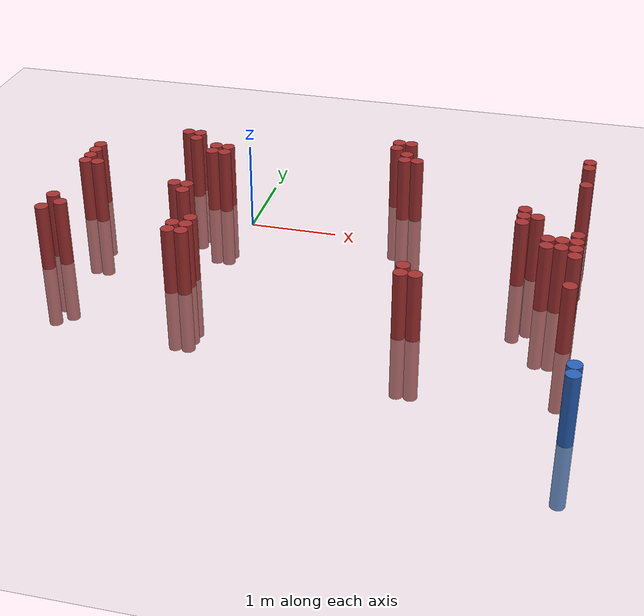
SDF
<sdf version="1.6">
 <world name="default">
  <model name="ground_plane">
   <static>1</static>
   <link name="link">
    <collision name="collision">
     <geometry><plane><normal>0 0 1</normal><size>100 100</size></plane></geometry>
     <surface><friction><ode><mu>100</mu><mu2>50</mu2></ode></friction></surface>
    </collision>
    <visual name="visual">
     <cast_shadows>0</cast_shadows>
     <geometry><plane><normal>0 0 1</normal><size>100 100</size></plane></geometry>
     <material>
      <script><uri>file://media/materials/scripts/gazebo.material</uri><name>Gazebo/Grey</name></script>
     </material>
    </visual>
   </link>
  </model>
  <model name="unit_cylinder_70">
   <static>1</static>
   <pose>3.925000 -3.275000 0.000000 0.000000 0.000000 0.000000</pose>
   <link name="link">
    <inertial>
     <mass>1</mass>
     <inertia><ixx>0.145833</ixx><ixy>0</ixy><ixz>0</ixz><iyy>0.145833</iyy><iyz>0</iyz><izz>0.125</izz></inertia>
    </inertial>
    <collision name="collision">
     <geometry><cylinder><radius>0.075000</radius><length>1.5</length></cylinder></geometry>
    </collision>
    <visual name="visual">
     <geometry><cylinder><radius>0.075000</radius><length>1.5</length></cylinder></geometry>
     <material>
      <ambient>0.152000 0.379000 0.720000 1</ambient>
      <diffuse>0.152000 0.379000 0.720000 1</diffuse>
     </material>
     <material>
      <script><name>Gazebo/Grey</name><uri>file://media/materials/scripts/gazebo.material</uri></script>
     </material>
    </visual>
   </link>
  </model>
  <model name="unit_cylinder_72">
   <static>1</static>
   <pose>3.925000 -3.125000 0.000000 0.000000 0.000000 0.000000</pose>
   <link name="link">
    <inertial>
     <mass>1</mass>
     <inertia><ixx>0.145833</ixx><ixy>0</ixy><ixz>0</ixz><iyy>0.145833</iyy><iyz>0</iyz><izz>0.125</izz></inertia>
    </inertial>
    <collision name="collision">
     <geometry><cylinder><radius>0.075000</radius><length>1.5</length></cylinder></geometry>
    </collision>
    <visual name="visual">
     <geometry><cylinder><radius>0.075000</radius><length>1.5</length></cylinder></geometry>
     <material>
      <ambient>0.152000 0.379000 0.720000 1</ambient>
      <diffuse>0.152000 0.379000 0.720000 1</diffuse>
     </material>
     <material>
      <script><name>Gazebo/Grey</name><uri>file://media/materials/scripts/gazebo.material</uri></script>
     </material>
    </visual>
   </link>
  </model>
  <model name="unit_cylinder_325">
   <static>1</static>
   <pose>-1.925000 -1.475000 0.000000 0.000000 0.000000 0.000000</pose>
   <link name="link">
    <inertial>
     <mass>1</mass>
     <inertia><ixx>0.145833</ixx><ixy>0</ixy><ixz>0</ixz><iyy>0.145833</iyy><iyz>0</iyz><izz>0.125</izz></inertia>
    </inertial>
    <collision name="collision">
     <geometry><cylinder><radius>0.075000</radius><length>1.5</length></cylinder></geometry>
    </collision>
    <visual name="visual">
     <geometry><cylinder><radius>0.075000</radius><length>1.5</length></cylinder></geometry>
     <material>
      <ambient>0.648000 0.192000 0.192000 1</ambient>
      <diffuse>0.648000 0.192000 0.192000 1</diffuse>
     </material>
     <material>
      <script><name>Gazebo/Grey</name><uri>file://media/materials/scripts/gazebo.material</uri></script>
     </material>
    </visual>
   </link>
  </model>
  <model name="unit_cylinder_326">
   <static>1</static>
   <pose>-1.925000 -1.175000 0.000000 0.000000 0.000000 0.000000</pose>
   <link name="link">
    <inertial>
     <mass>1</mass>
     <inertia><ixx>0.145833</ixx><ixy>0</ixy><ixz>0</ixz><iyy>0.145833</iyy><iyz>0</iyz><izz>0.125</izz></inertia>
    </inertial>
    <collision name="collision">
     <geometry><cylinder><radius>0.075000</radius><length>1.5</length></cylinder></geometry>
    </collision>
    <visual name="visual">
     <geometry><cylinder><radius>0.075000</radius><length>1.5</length></cylinder></geometry>
     <material>
      <ambient>0.648000 0.192000 0.192000 1</ambient>
      <diffuse>0.648000 0.192000 0.192000 1</diffuse>
     </material>
     <material>
      <script><name>Gazebo/Grey</name><uri>file://media/materials/scripts/gazebo.material</uri></script>
     </material>
    </visual>
   </link>
  </model>
  <model name="unit_cylinder_327">
   <static>1</static>
   <pose>-1.925000 -0.275000 0.000000 0.000000 0.000000 0.000000</pose>
   <link name="link">
    <inertial>
     <mass>1</mass>
     <inertia><ixx>0.145833</ixx><ixy>0</ixy><ixz>0</ixz><iyy>0.145833</iyy><iyz>0</iyz><izz>0.125</izz></inertia>
    </inertial>
    <collision name="collision">
     <geometry><cylinder><radius>0.075000</radius><length>1.5</length></cylinder></geometry>
    </collision>
    <visual name="visual">
     <geometry><cylinder><radius>0.075000</radius><length>1.5</length></cylinder></geometry>
     <material>
      <ambient>0.648000 0.192000 0.192000 1</ambient>
      <diffuse>0.648000 0.192000 0.192000 1</diffuse>
     </material>
     <material>
      <script><name>Gazebo/Grey</name><uri>file://media/materials/scripts/gazebo.material</uri></script>
     </material>
    </visual>
   </link>
  </model>
  <model name="unit_cylinder_328">
   <static>1</static>
   <pose>-1.925000 -0.125000 0.000000 0.000000 0.000000 0.000000</pose>
   <link name="link">
    <inertial>
     <mass>1</mass>
     <inertia><ixx>0.145833</ixx><ixy>0</ixy><ixz>0</ixz><iyy>0.145833</iyy><iyz>0</iyz><izz>0.125</izz></inertia>
    </inertial>
    <collision name="collision">
     <geometry><cylinder><radius>0.075000</radius><length>1.5</length></cylinder></geometry>
    </collision>
    <visual name="visual">
     <geometry><cylinder><radius>0.075000</radius><length>1.5</length></cylinder></geometry>
     <material>
      <ambient>0.648000 0.192000 0.192000 1</ambient>
      <diffuse>0.648000 0.192000 0.192000 1</diffuse>
     </material>
     <material>
      <script><name>Gazebo/Grey</name><uri>file://media/materials/scripts/gazebo.material</uri></script>
     </material>
    </visual>
   </link>
  </model>
  <model name="unit_cylinder_329">
   <static>1</static>
   <pose>-1.925000 0.025000 0.000000 0.000000 0.000000 0.000000</pose>
   <link name="link">
    <inertial>
     <mass>1</mass>
     <inertia><ixx>0.145833</ixx><ixy>0</ixy><ixz>0</ixz><iyy>0.145833</iyy><iyz>0</iyz><izz>0.125</izz></inertia>
    </inertial>
    <collision name="collision">
     <geometry><cylinder><radius>0.075000</radius><length>1.5</length></cylinder></geometry>
    </collision>
    <visual name="visual">
     <geometry><cylinder><radius>0.075000</radius><length>1.5</length></cylinder></geometry>
     <material>
      <ambient>0.648000 0.192000 0.192000 1</ambient>
      <diffuse>0.648000 0.192000 0.192000 1</diffuse>
     </material>
     <material>
      <script><name>Gazebo/Grey</name><uri>file://media/materials/scripts/gazebo.material</uri></script>
     </material>
    </visual>
   </link>
  </model>
  <model name="unit_cylinder_330">
   <static>1</static>
   <pose>-1.925000 0.175000 0.000000 0.000000 0.000000 0.000000</pose>
   <link name="link">
    <inertial>
     <mass>1</mass>
     <inertia><ixx>0.145833</ixx><ixy>0</ixy><ixz>0</ixz><iyy>0.145833</iyy><iyz>0</iyz><izz>0.125</izz></inertia>
    </inertial>
    <collision name="collision">
     <geometry><cylinder><radius>0.075000</radius><length>1.5</length></cylinder></geometry>
    </collision>
    <visual name="visual">
     <geometry><cylinder><radius>0.075000</radius><length>1.5</length></cylinder></geometry>
     <material>
      <ambient>0.648000 0.192000 0.192000 1</ambient>
      <diffuse>0.648000 0.192000 0.192000 1</diffuse>
     </material>
     <material>
      <script><name>Gazebo/Grey</name><uri>file://media/materials/scripts/gazebo.material</uri></script>
     </material>
    </visual>
   </link>
  </model>
  <model name="unit_cylinder_334">
   <static>1</static>
   <pose>-1.775000 -1.325000 0.000000 0.000000 0.000000 0.000000</pose>
   <link name="link">
    <inertial>
     <mass>1</mass>
     <inertia><ixx>0.145833</ixx><ixy>0</ixy><ixz>0</ixz><iyy>0.145833</iyy><iyz>0</iyz><izz>0.125</izz></inertia>
    </inertial>
    <collision name="collision">
     <geometry><cylinder><radius>0.075000</radius><length>1.5</length></cylinder></geometry>
    </collision>
    <visual name="visual">
     <geometry><cylinder><radius>0.075000</radius><length>1.5</length></cylinder></geometry>
     <material>
      <ambient>0.648000 0.192000 0.192000 1</ambient>
      <diffuse>0.648000 0.192000 0.192000 1</diffuse>
     </material>
     <material>
      <script><name>Gazebo/Grey</name><uri>file://media/materials/scripts/gazebo.material</uri></script>
     </material>
    </visual>
   </link>
  </model>
  <model name="unit_cylinder_335">
   <static>1</static>
   <pose>-1.775000 -0.275000 0.000000 0.000000 0.000000 0.000000</pose>
   <link name="link">
    <inertial>
     <mass>1</mass>
     <inertia><ixx>0.145833</ixx><ixy>0</ixy><ixz>0</ixz><iyy>0.145833</iyy><iyz>0</iyz><izz>0.125</izz></inertia>
    </inertial>
    <collision name="collision">
     <geometry><cylinder><radius>0.075000</radius><length>1.5</length></cylinder></geometry>
    </collision>
    <visual name="visual">
     <geometry><cylinder><radius>0.075000</radius><length>1.5</length></cylinder></geometry>
     <material>
      <ambient>0.648000 0.192000 0.192000 1</ambient>
      <diffuse>0.648000 0.192000 0.192000 1</diffuse>
     </material>
     <material>
      <script><name>Gazebo/Grey</name><uri>file://media/materials/scripts/gazebo.material</uri></script>
     </material>
    </visual>
   </link>
  </model>
  <model name="unit_cylinder_345">
   <static>1</static>
   <pose>-1.025000 0.775000 0.000000 0.000000 0.000000 0.000000</pose>
   <link name="link">
    <inertial>
     <mass>1</mass>
     <inertia><ixx>0.145833</ixx><ixy>0</ixy><ixz>0</ixz><iyy>0.145833</iyy><iyz>0</iyz><izz>0.125</izz></inertia>
    </inertial>
    <collision name="collision">
     <geometry><cylinder><radius>0.075000</radius><length>1.5</length></cylinder></geometry>
    </collision>
    <visual name="visual">
     <geometry><cylinder><radius>0.075000</radius><length>1.5</length></cylinder></geometry>
     <material>
      <ambient>0.648000 0.192000 0.192000 1</ambient>
      <diffuse>0.648000 0.192000 0.192000 1</diffuse>
     </material>
     <material>
      <script><name>Gazebo/Grey</name><uri>file://media/materials/scripts/gazebo.material</uri></script>
     </material>
    </visual>
   </link>
  </model>
  <model name="unit_cylinder_348">
   <static>1</static>
   <pose>-0.875000 0.625000 0.000000 0.000000 0.000000 0.000000</pose>
   <link name="link">
    <inertial>
     <mass>1</mass>
     <inertia><ixx>0.145833</ixx><ixy>0</ixy><ixz>0</ixz><iyy>0.145833</iyy><iyz>0</iyz><izz>0.125</izz></inertia>
    </inertial>
    <collision name="collision">
     <geometry><cylinder><radius>0.075000</radius><length>1.5</length></cylinder></geometry>
    </collision>
    <visual name="visual">
     <geometry><cylinder><radius>0.075000</radius><length>1.5</length></cylinder></geometry>
     <material>
      <ambient>0.648000 0.192000 0.192000 1</ambient>
      <diffuse>0.648000 0.192000 0.192000 1</diffuse>
     </material>
     <material>
      <script><name>Gazebo/Grey</name><uri>file://media/materials/scripts/gazebo.material</uri></script>
     </material>
    </visual>
   </link>
  </model>
  <model name="unit_cylinder_349">
   <static>1</static>
   <pose>-0.875000 0.775000 0.000000 0.000000 0.000000 0.000000</pose>
   <link name="link">
    <inertial>
     <mass>1</mass>
     <inertia><ixx>0.145833</ixx><ixy>0</ixy><ixz>0</ixz><iyy>0.145833</iyy><iyz>0</iyz><izz>0.125</izz></inertia>
    </inertial>
    <collision name="collision">
     <geometry><cylinder><radius>0.075000</radius><length>1.5</length></cylinder></geometry>
    </collision>
    <visual name="visual">
     <geometry><cylinder><radius>0.075000</radius><length>1.5</length></cylinder></geometry>
     <material>
      <ambient>0.648000 0.192000 0.192000 1</ambient>
      <diffuse>0.648000 0.192000 0.192000 1</diffuse>
     </material>
     <material>
      <script><name>Gazebo/Grey</name><uri>file://media/materials/scripts/gazebo.material</uri></script>
     </material>
    </visual>
   </link>
  </model>
  <model name="unit_cylinder_354">
   <static>1</static>
   <pose>-0.725000 -0.575000 0.000000 0.000000 0.000000 0.000000</pose>
   <link name="link">
    <inertial>
     <mass>1</mass>
     <inertia><ixx>0.145833</ixx><ixy>0</ixy><ixz>0</ixz><iyy>0.145833</iyy><iyz>0</iyz><izz>0.125</izz></inertia>
    </inertial>
    <collision name="collision">
     <geometry><cylinder><radius>0.075000</radius><length>1.5</length></cylinder></geometry>
    </collision>
    <visual name="visual">
     <geometry><cylinder><radius>0.075000</radius><length>1.5</length></cylinder></geometry>
     <material>
      <ambient>0.648000 0.192000 0.192000 1</ambient>
      <diffuse>0.648000 0.192000 0.192000 1</diffuse>
     </material>
     <material>
      <script><name>Gazebo/Grey</name><uri>file://media/materials/scripts/gazebo.material</uri></script>
     </material>
    </visual>
   </link>
  </model>
  <model name="unit_cylinder_359">
   <static>1</static>
   <pose>-0.575000 -0.725000 0.000000 0.000000 0.000000 0.000000</pose>
   <link name="link">
    <inertial>
     <mass>1</mass>
     <inertia><ixx>0.145833</ixx><ixy>0</ixy><ixz>0</ixz><iyy>0.145833</iyy><iyz>0</iyz><izz>0.125</izz></inertia>
    </inertial>
    <collision name="collision">
     <geometry><cylinder><radius>0.075000</radius><length>1.5</length></cylinder></geometry>
    </collision>
    <visual name="visual">
     <geometry><cylinder><radius>0.075000</radius><length>1.5</length></cylinder></geometry>
     <material>
      <ambient>0.648000 0.192000 0.192000 1</ambient>
      <diffuse>0.648000 0.192000 0.192000 1</diffuse>
     </material>
     <material>
      <script><name>Gazebo/Grey</name><uri>file://media/materials/scripts/gazebo.material</uri></script>
     </material>
    </visual>
   </link>
  </model>
  <model name="unit_cylinder_360">
   <static>1</static>
   <pose>-0.575000 -0.575000 0.000000 0.000000 0.000000 0.000000</pose>
   <link name="link">
    <inertial>
     <mass>1</mass>
     <inertia><ixx>0.145833</ixx><ixy>0</ixy><ixz>0</ixz><iyy>0.145833</iyy><iyz>0</iyz><izz>0.125</izz></inertia>
    </inertial>
    <collision name="collision">
     <geometry><cylinder><radius>0.075000</radius><length>1.5</length></cylinder></geometry>
    </collision>
    <visual name="visual">
     <geometry><cylinder><radius>0.075000</radius><length>1.5</length></cylinder></geometry>
     <material>
      <ambient>0.648000 0.192000 0.192000 1</ambient>
      <diffuse>0.648000 0.192000 0.192000 1</diffuse>
     </material>
     <material>
      <script><name>Gazebo/Grey</name><uri>file://media/materials/scripts/gazebo.material</uri></script>
     </material>
    </visual>
   </link>
  </model>
  <model name="unit_cylinder_361">
   <static>1</static>
   <pose>-0.575000 0.325000 0.000000 0.000000 0.000000 0.000000</pose>
   <link name="link">
    <inertial>
     <mass>1</mass>
     <inertia><ixx>0.145833</ixx><ixy>0</ixy><ixz>0</ixz><iyy>0.145833</iyy><iyz>0</iyz><izz>0.125</izz></inertia>
    </inertial>
    <collision name="collision">
     <geometry><cylinder><radius>0.075000</radius><length>1.5</length></cylinder></geometry>
    </collision>
    <visual name="visual">
     <geometry><cylinder><radius>0.075000</radius><length>1.5</length></cylinder></geometry>
     <material>
      <ambient>0.648000 0.192000 0.192000 1</ambient>
      <diffuse>0.648000 0.192000 0.192000 1</diffuse>
     </material>
     <material>
      <script><name>Gazebo/Grey</name><uri>file://media/materials/scripts/gazebo.material</uri></script>
     </material>
    </visual>
   </link>
  </model>
  <model name="unit_cylinder_362">
   <static>1</static>
   <pose>-0.575000 0.475000 0.000000 0.000000 0.000000 0.000000</pose>
   <link name="link">
    <inertial>
     <mass>1</mass>
     <inertia><ixx>0.145833</ixx><ixy>0</ixy><ixz>0</ixz><iyy>0.145833</iyy><iyz>0</iyz><izz>0.125</izz></inertia>
    </inertial>
    <collision name="collision">
     <geometry><cylinder><radius>0.075000</radius><length>1.5</length></cylinder></geometry>
    </collision>
    <visual name="visual">
     <geometry><cylinder><radius>0.075000</radius><length>1.5</length></cylinder></geometry>
     <material>
      <ambient>0.648000 0.192000 0.192000 1</ambient>
      <diffuse>0.648000 0.192000 0.192000 1</diffuse>
     </material>
     <material>
      <script><name>Gazebo/Grey</name><uri>file://media/materials/scripts/gazebo.material</uri></script>
     </material>
    </visual>
   </link>
  </model>
  <model name="unit_cylinder_363">
   <static>1</static>
   <pose>-0.425000 -1.625000 0.000000 0.000000 0.000000 0.000000</pose>
   <link name="link">
    <inertial>
     <mass>1</mass>
     <inertia><ixx>0.145833</ixx><ixy>0</ixy><ixz>0</ixz><iyy>0.145833</iyy><iyz>0</iyz><izz>0.125</izz></inertia>
    </inertial>
    <collision name="collision">
     <geometry><cylinder><radius>0.075000</radius><length>1.5</length></cylinder></geometry>
    </collision>
    <visual name="visual">
     <geometry><cylinder><radius>0.075000</radius><length>1.5</length></cylinder></geometry>
     <material>
      <ambient>0.648000 0.192000 0.192000 1</ambient>
      <diffuse>0.648000 0.192000 0.192000 1</diffuse>
     </material>
     <material>
      <script><name>Gazebo/Grey</name><uri>file://media/materials/scripts/gazebo.material</uri></script>
     </material>
    </visual>
   </link>
  </model>
  <model name="unit_cylinder_364">
   <static>1</static>
   <pose>-0.425000 -1.475000 0.000000 0.000000 0.000000 0.000000</pose>
   <link name="link">
    <inertial>
     <mass>1</mass>
     <inertia><ixx>0.145833</ixx><ixy>0</ixy><ixz>0</ixz><iyy>0.145833</iyy><iyz>0</iyz><izz>0.125</izz></inertia>
    </inertial>
    <collision name="collision">
     <geometry><cylinder><radius>0.075000</radius><length>1.5</length></cylinder></geometry>
    </collision>
    <visual name="visual">
     <geometry><cylinder><radius>0.075000</radius><length>1.5</length></cylinder></geometry>
     <material>
      <ambient>0.648000 0.192000 0.192000 1</ambient>
      <diffuse>0.648000 0.192000 0.192000 1</diffuse>
     </material>
     <material>
      <script><name>Gazebo/Grey</name><uri>file://media/materials/scripts/gazebo.material</uri></script>
     </material>
    </visual>
   </link>
  </model>
  <model name="unit_cylinder_365">
   <static>1</static>
   <pose>-0.425000 0.325000 0.000000 0.000000 0.000000 0.000000</pose>
   <link name="link">
    <inertial>
     <mass>1</mass>
     <inertia><ixx>0.145833</ixx><ixy>0</ixy><ixz>0</ixz><iyy>0.145833</iyy><iyz>0</iyz><izz>0.125</izz></inertia>
    </inertial>
    <collision name="collision">
     <geometry><cylinder><radius>0.075000</radius><length>1.5</length></cylinder></geometry>
    </collision>
    <visual name="visual">
     <geometry><cylinder><radius>0.075000</radius><length>1.5</length></cylinder></geometry>
     <material>
      <ambient>0.648000 0.192000 0.192000 1</ambient>
      <diffuse>0.648000 0.192000 0.192000 1</diffuse>
     </material>
     <material>
      <script><name>Gazebo/Grey</name><uri>file://media/materials/scripts/gazebo.material</uri></script>
     </material>
    </visual>
   </link>
  </model>
  <model name="unit_cylinder_366">
   <static>1</static>
   <pose>-0.425000 0.475000 0.000000 0.000000 0.000000 0.000000</pose>
   <link name="link">
    <inertial>
     <mass>1</mass>
     <inertia><ixx>0.145833</ixx><ixy>0</ixy><ixz>0</ixz><iyy>0.145833</iyy><iyz>0</iyz><izz>0.125</izz></inertia>
    </inertial>
    <collision name="collision">
     <geometry><cylinder><radius>0.075000</radius><length>1.5</length></cylinder></geometry>
    </collision>
    <visual name="visual">
     <geometry><cylinder><radius>0.075000</radius><length>1.5</length></cylinder></geometry>
     <material>
      <ambient>0.648000 0.192000 0.192000 1</ambient>
      <diffuse>0.648000 0.192000 0.192000 1</diffuse>
     </material>
     <material>
      <script><name>Gazebo/Grey</name><uri>file://media/materials/scripts/gazebo.material</uri></script>
     </material>
    </visual>
   </link>
  </model>
  <model name="unit_cylinder_367">
   <static>1</static>
   <pose>-0.275000 -1.625000 0.000000 0.000000 0.000000 0.000000</pose>
   <link name="link">
    <inertial>
     <mass>1</mass>
     <inertia><ixx>0.145833</ixx><ixy>0</ixy><ixz>0</ixz><iyy>0.145833</iyy><iyz>0</iyz><izz>0.125</izz></inertia>
    </inertial>
    <collision name="collision">
     <geometry><cylinder><radius>0.075000</radius><length>1.5</length></cylinder></geometry>
    </collision>
    <visual name="visual">
     <geometry><cylinder><radius>0.075000</radius><length>1.5</length></cylinder></geometry>
     <material>
      <ambient>0.648000 0.192000 0.192000 1</ambient>
      <diffuse>0.648000 0.192000 0.192000 1</diffuse>
     </material>
     <material>
      <script><name>Gazebo/Grey</name><uri>file://media/materials/scripts/gazebo.material</uri></script>
     </material>
    </visual>
   </link>
  </model>
  <model name="unit_cylinder_368">
   <static>1</static>
   <pose>-0.275000 -1.475000 0.000000 0.000000 0.000000 0.000000</pose>
   <link name="link">
    <inertial>
     <mass>1</mass>
     <inertia><ixx>0.145833</ixx><ixy>0</ixy><ixz>0</ixz><iyy>0.145833</iyy><iyz>0</iyz><izz>0.125</izz></inertia>
    </inertial>
    <collision name="collision">
     <geometry><cylinder><radius>0.075000</radius><length>1.5</length></cylinder></geometry>
    </collision>
    <visual name="visual">
     <geometry><cylinder><radius>0.075000</radius><length>1.5</length></cylinder></geometry>
     <material>
      <ambient>0.648000 0.192000 0.192000 1</ambient>
      <diffuse>0.648000 0.192000 0.192000 1</diffuse>
     </material>
     <material>
      <script><name>Gazebo/Grey</name><uri>file://media/materials/scripts/gazebo.material</uri></script>
     </material>
    </visual>
   </link>
  </model>
  <model name="unit_cylinder_369">
   <static>1</static>
   <pose>-0.275000 -1.325000 0.000000 0.000000 0.000000 0.000000</pose>
   <link name="link">
    <inertial>
     <mass>1</mass>
     <inertia><ixx>0.145833</ixx><ixy>0</ixy><ixz>0</ixz><iyy>0.145833</iyy><iyz>0</iyz><izz>0.125</izz></inertia>
    </inertial>
    <collision name="collision">
     <geometry><cylinder><radius>0.075000</radius><length>1.5</length></cylinder></geometry>
    </collision>
    <visual name="visual">
     <geometry><cylinder><radius>0.075000</radius><length>1.5</length></cylinder></geometry>
     <material>
      <ambient>0.648000 0.192000 0.192000 1</ambient>
      <diffuse>0.648000 0.192000 0.192000 1</diffuse>
     </material>
     <material>
      <script><name>Gazebo/Grey</name><uri>file://media/materials/scripts/gazebo.material</uri></script>
     </material>
    </visual>
   </link>
  </model>
  <model name="unit_cylinder_374">
   <static>1</static>
   <pose>1.525000 0.925000 0.000000 0.000000 0.000000 0.000000</pose>
   <link name="link">
    <inertial>
     <mass>1</mass>
     <inertia><ixx>0.145833</ixx><ixy>0</ixy><ixz>0</ixz><iyy>0.145833</iyy><iyz>0</iyz><izz>0.125</izz></inertia>
    </inertial>
    <collision name="collision">
     <geometry><cylinder><radius>0.075000</radius><length>1.5</length></cylinder></geometry>
    </collision>
    <visual name="visual">
     <geometry><cylinder><radius>0.075000</radius><length>1.5</length></cylinder></geometry>
     <material>
      <ambient>0.648000 0.192000 0.192000 1</ambient>
      <diffuse>0.648000 0.192000 0.192000 1</diffuse>
     </material>
     <material>
      <script><name>Gazebo/Grey</name><uri>file://media/materials/scripts/gazebo.material</uri></script>
     </material>
    </visual>
   </link>
  </model>
  <model name="unit_cylinder_375">
   <static>1</static>
   <pose>1.525000 1.075000 0.000000 0.000000 0.000000 0.000000</pose>
   <link name="link">
    <inertial>
     <mass>1</mass>
     <inertia><ixx>0.145833</ixx><ixy>0</ixy><ixz>0</ixz><iyy>0.145833</iyy><iyz>0</iyz><izz>0.125</izz></inertia>
    </inertial>
    <collision name="collision">
     <geometry><cylinder><radius>0.075000</radius><length>1.5</length></cylinder></geometry>
    </collision>
    <visual name="visual">
     <geometry><cylinder><radius>0.075000</radius><length>1.5</length></cylinder></geometry>
     <material>
      <ambient>0.648000 0.192000 0.192000 1</ambient>
      <diffuse>0.648000 0.192000 0.192000 1</diffuse>
     </material>
     <material>
      <script><name>Gazebo/Grey</name><uri>file://media/materials/scripts/gazebo.material</uri></script>
     </material>
    </visual>
   </link>
  </model>
  <model name="unit_cylinder_379">
   <static>1</static>
   <pose>1.675000 0.625000 0.000000 0.000000 0.000000 0.000000</pose>
   <link name="link">
    <inertial>
     <mass>1</mass>
     <inertia><ixx>0.145833</ixx><ixy>0</ixy><ixz>0</ixz><iyy>0.145833</iyy><iyz>0</iyz><izz>0.125</izz></inertia>
    </inertial>
    <collision name="collision">
     <geometry><cylinder><radius>0.075000</radius><length>1.5</length></cylinder></geometry>
    </collision>
    <visual name="visual">
     <geometry><cylinder><radius>0.075000</radius><length>1.5</length></cylinder></geometry>
     <material>
      <ambient>0.648000 0.192000 0.192000 1</ambient>
      <diffuse>0.648000 0.192000 0.192000 1</diffuse>
     </material>
     <material>
      <script><name>Gazebo/Grey</name><uri>file://media/materials/scripts/gazebo.material</uri></script>
     </material>
    </visual>
   </link>
  </model>
  <model name="unit_cylinder_380">
   <static>1</static>
   <pose>1.675000 0.775000 0.000000 0.000000 0.000000 0.000000</pose>
   <link name="link">
    <inertial>
     <mass>1</mass>
     <inertia><ixx>0.145833</ixx><ixy>0</ixy><ixz>0</ixz><iyy>0.145833</iyy><iyz>0</iyz><izz>0.125</izz></inertia>
    </inertial>
    <collision name="collision">
     <geometry><cylinder><radius>0.075000</radius><length>1.5</length></cylinder></geometry>
    </collision>
    <visual name="visual">
     <geometry><cylinder><radius>0.075000</radius><length>1.5</length></cylinder></geometry>
     <material>
      <ambient>0.648000 0.192000 0.192000 1</ambient>
      <diffuse>0.648000 0.192000 0.192000 1</diffuse>
     </material>
     <material>
      <script><name>Gazebo/Grey</name><uri>file://media/materials/scripts/gazebo.material</uri></script>
     </material>
    </visual>
   </link>
  </model>
  <model name="unit_cylinder_381">
   <static>1</static>
   <pose>1.675000 1.075000 0.000000 0.000000 0.000000 0.000000</pose>
   <link name="link">
    <inertial>
     <mass>1</mass>
     <inertia><ixx>0.145833</ixx><ixy>0</ixy><ixz>0</ixz><iyy>0.145833</iyy><iyz>0</iyz><izz>0.125</izz></inertia>
    </inertial>
    <collision name="collision">
     <geometry><cylinder><radius>0.075000</radius><length>1.5</length></cylinder></geometry>
    </collision>
    <visual name="visual">
     <geometry><cylinder><radius>0.075000</radius><length>1.5</length></cylinder></geometry>
     <material>
      <ambient>0.648000 0.192000 0.192000 1</ambient>
      <diffuse>0.648000 0.192000 0.192000 1</diffuse>
     </material>
     <material>
      <script><name>Gazebo/Grey</name><uri>file://media/materials/scripts/gazebo.material</uri></script>
     </material>
    </visual>
   </link>
  </model>
  <model name="unit_cylinder_386">
   <static>1</static>
   <pose>1.825000 0.625000 0.000000 0.000000 0.000000 0.000000</pose>
   <link name="link">
    <inertial>
     <mass>1</mass>
     <inertia><ixx>0.145833</ixx><ixy>0</ixy><ixz>0</ixz><iyy>0.145833</iyy><iyz>0</iyz><izz>0.125</izz></inertia>
    </inertial>
    <collision name="collision">
     <geometry><cylinder><radius>0.075000</radius><length>1.5</length></cylinder></geometry>
    </collision>
    <visual name="visual">
     <geometry><cylinder><radius>0.075000</radius><length>1.5</length></cylinder></geometry>
     <material>
      <ambient>0.648000 0.192000 0.192000 1</ambient>
      <diffuse>0.648000 0.192000 0.192000 1</diffuse>
     </material>
     <material>
      <script><name>Gazebo/Grey</name><uri>file://media/materials/scripts/gazebo.material</uri></script>
     </material>
    </visual>
   </link>
  </model>
  <model name="unit_cylinder_390">
   <static>1</static>
   <pose>2.125000 -1.925000 0.000000 0.000000 0.000000 0.000000</pose>
   <link name="link">
    <inertial>
     <mass>1</mass>
     <inertia><ixx>0.145833</ixx><ixy>0</ixy><ixz>0</ixz><iyy>0.145833</iyy><iyz>0</iyz><izz>0.125</izz></inertia>
    </inertial>
    <collision name="collision">
     <geometry><cylinder><radius>0.075000</radius><length>1.5</length></cylinder></geometry>
    </collision>
    <visual name="visual">
     <geometry><cylinder><radius>0.075000</radius><length>1.5</length></cylinder></geometry>
     <material>
      <ambient>0.648000 0.192000 0.192000 1</ambient>
      <diffuse>0.648000 0.192000 0.192000 1</diffuse>
     </material>
     <material>
      <script><name>Gazebo/Grey</name><uri>file://media/materials/scripts/gazebo.material</uri></script>
     </material>
    </visual>
   </link>
  </model>
  <model name="unit_cylinder_391">
   <static>1</static>
   <pose>2.125000 -1.775000 0.000000 0.000000 0.000000 0.000000</pose>
   <link name="link">
    <inertial>
     <mass>1</mass>
     <inertia><ixx>0.145833</ixx><ixy>0</ixy><ixz>0</ixz><iyy>0.145833</iyy><iyz>0</iyz><izz>0.125</izz></inertia>
    </inertial>
    <collision name="collision">
     <geometry><cylinder><radius>0.075000</radius><length>1.5</length></cylinder></geometry>
    </collision>
    <visual name="visual">
     <geometry><cylinder><radius>0.075000</radius><length>1.5</length></cylinder></geometry>
     <material>
      <ambient>0.648000 0.192000 0.192000 1</ambient>
      <diffuse>0.648000 0.192000 0.192000 1</diffuse>
     </material>
     <material>
      <script><name>Gazebo/Grey</name><uri>file://media/materials/scripts/gazebo.material</uri></script>
     </material>
    </visual>
   </link>
  </model>
  <model name="unit_cylinder_394">
   <static>1</static>
   <pose>2.275000 -1.925000 0.000000 0.000000 0.000000 0.000000</pose>
   <link name="link">
    <inertial>
     <mass>1</mass>
     <inertia><ixx>0.145833</ixx><ixy>0</ixy><ixz>0</ixz><iyy>0.145833</iyy><iyz>0</iyz><izz>0.125</izz></inertia>
    </inertial>
    <collision name="collision">
     <geometry><cylinder><radius>0.075000</radius><length>1.5</length></cylinder></geometry>
    </collision>
    <visual name="visual">
     <geometry><cylinder><radius>0.075000</radius><length>1.5</length></cylinder></geometry>
     <material>
      <ambient>0.648000 0.192000 0.192000 1</ambient>
      <diffuse>0.648000 0.192000 0.192000 1</diffuse>
     </material>
     <material>
      <script><name>Gazebo/Grey</name><uri>file://media/materials/scripts/gazebo.material</uri></script>
     </material>
    </visual>
   </link>
  </model>
  <model name="unit_cylinder_422">
   <static>1</static>
   <pose>3.175000 -0.575000 0.000000 0.000000 0.000000 0.000000</pose>
   <link name="link">
    <inertial>
     <mass>1</mass>
     <inertia><ixx>0.145833</ixx><ixy>0</ixy><ixz>0</ixz><iyy>0.145833</iyy><iyz>0</iyz><izz>0.125</izz></inertia>
    </inertial>
    <collision name="collision">
     <geometry><cylinder><radius>0.075000</radius><length>1.5</length></cylinder></geometry>
    </collision>
    <visual name="visual">
     <geometry><cylinder><radius>0.075000</radius><length>1.5</length></cylinder></geometry>
     <material>
      <ambient>0.648000 0.192000 0.192000 1</ambient>
      <diffuse>0.648000 0.192000 0.192000 1</diffuse>
     </material>
     <material>
      <script><name>Gazebo/Grey</name><uri>file://media/materials/scripts/gazebo.material</uri></script>
     </material>
    </visual>
   </link>
  </model>
  <model name="unit_cylinder_423">
   <static>1</static>
   <pose>3.175000 -0.425000 0.000000 0.000000 0.000000 0.000000</pose>
   <link name="link">
    <inertial>
     <mass>1</mass>
     <inertia><ixx>0.145833</ixx><ixy>0</ixy><ixz>0</ixz><iyy>0.145833</iyy><iyz>0</iyz><izz>0.125</izz></inertia>
    </inertial>
    <collision name="collision">
     <geometry><cylinder><radius>0.075000</radius><length>1.5</length></cylinder></geometry>
    </collision>
    <visual name="visual">
     <geometry><cylinder><radius>0.075000</radius><length>1.5</length></cylinder></geometry>
     <material>
      <ambient>0.648000 0.192000 0.192000 1</ambient>
      <diffuse>0.648000 0.192000 0.192000 1</diffuse>
     </material>
     <material>
      <script><name>Gazebo/Grey</name><uri>file://media/materials/scripts/gazebo.material</uri></script>
     </material>
    </visual>
   </link>
  </model>
  <model name="unit_cylinder_424">
   <static>1</static>
   <pose>3.175000 -0.275000 0.000000 0.000000 0.000000 0.000000</pose>
   <link name="link">
    <inertial>
     <mass>1</mass>
     <inertia><ixx>0.145833</ixx><ixy>0</ixy><ixz>0</ixz><iyy>0.145833</iyy><iyz>0</iyz><izz>0.125</izz></inertia>
    </inertial>
    <collision name="collision">
     <geometry><cylinder><radius>0.075000</radius><length>1.5</length></cylinder></geometry>
    </collision>
    <visual name="visual">
     <geometry><cylinder><radius>0.075000</radius><length>1.5</length></cylinder></geometry>
     <material>
      <ambient>0.648000 0.192000 0.192000 1</ambient>
      <diffuse>0.648000 0.192000 0.192000 1</diffuse>
     </material>
     <material>
      <script><name>Gazebo/Grey</name><uri>file://media/materials/scripts/gazebo.material</uri></script>
     </material>
    </visual>
   </link>
  </model>
  <model name="unit_cylinder_429">
   <static>1</static>
   <pose>3.325000 -0.425000 0.000000 0.000000 0.000000 0.000000</pose>
   <link name="link">
    <inertial>
     <mass>1</mass>
     <inertia><ixx>0.145833</ixx><ixy>0</ixy><ixz>0</ixz><iyy>0.145833</iyy><iyz>0</iyz><izz>0.125</izz></inertia>
    </inertial>
    <collision name="collision">
     <geometry><cylinder><radius>0.075000</radius><length>1.5</length></cylinder></geometry>
    </collision>
    <visual name="visual">
     <geometry><cylinder><radius>0.075000</radius><length>1.5</length></cylinder></geometry>
     <material>
      <ambient>0.648000 0.192000 0.192000 1</ambient>
      <diffuse>0.648000 0.192000 0.192000 1</diffuse>
     </material>
     <material>
      <script><name>Gazebo/Grey</name><uri>file://media/materials/scripts/gazebo.material</uri></script>
     </material>
    </visual>
   </link>
  </model>
  <model name="unit_cylinder_433">
   <static>1</static>
   <pose>3.475000 -1.025000 0.000000 0.000000 0.000000 0.000000</pose>
   <link name="link">
    <inertial>
     <mass>1</mass>
     <inertia><ixx>0.145833</ixx><ixy>0</ixy><ixz>0</ixz><iyy>0.145833</iyy><iyz>0</iyz><izz>0.125</izz></inertia>
    </inertial>
    <collision name="collision">
     <geometry><cylinder><radius>0.075000</radius><length>1.5</length></cylinder></geometry>
    </collision>
    <visual name="visual">
     <geometry><cylinder><radius>0.075000</radius><length>1.5</length></cylinder></geometry>
     <material>
      <ambient>0.648000 0.192000 0.192000 1</ambient>
      <diffuse>0.648000 0.192000 0.192000 1</diffuse>
     </material>
     <material>
      <script><name>Gazebo/Grey</name><uri>file://media/materials/scripts/gazebo.material</uri></script>
     </material>
    </visual>
   </link>
  </model>
  <model name="unit_cylinder_434">
   <static>1</static>
   <pose>3.475000 -0.875000 0.000000 0.000000 0.000000 0.000000</pose>
   <link name="link">
    <inertial>
     <mass>1</mass>
     <inertia><ixx>0.145833</ixx><ixy>0</ixy><ixz>0</ixz><iyy>0.145833</iyy><iyz>0</iyz><izz>0.125</izz></inertia>
    </inertial>
    <collision name="collision">
     <geometry><cylinder><radius>0.075000</radius><length>1.5</length></cylinder></geometry>
    </collision>
    <visual name="visual">
     <geometry><cylinder><radius>0.075000</radius><length>1.5</length></cylinder></geometry>
     <material>
      <ambient>0.648000 0.192000 0.192000 1</ambient>
      <diffuse>0.648000 0.192000 0.192000 1</diffuse>
     </material>
     <material>
      <script><name>Gazebo/Grey</name><uri>file://media/materials/scripts/gazebo.material</uri></script>
     </material>
    </visual>
   </link>
  </model>
  <model name="unit_cylinder_435">
   <static>1</static>
   <pose>3.625000 -1.025000 0.000000 0.000000 0.000000 0.000000</pose>
   <link name="link">
    <inertial>
     <mass>1</mass>
     <inertia><ixx>0.145833</ixx><ixy>0</ixy><ixz>0</ixz><iyy>0.145833</iyy><iyz>0</iyz><izz>0.125</izz></inertia>
    </inertial>
    <collision name="collision">
     <geometry><cylinder><radius>0.075000</radius><length>1.5</length></cylinder></geometry>
    </collision>
    <visual name="visual">
     <geometry><cylinder><radius>0.075000</radius><length>1.5</length></cylinder></geometry>
     <material>
      <ambient>0.648000 0.192000 0.192000 1</ambient>
      <diffuse>0.648000 0.192000 0.192000 1</diffuse>
     </material>
     <material>
      <script><name>Gazebo/Grey</name><uri>file://media/materials/scripts/gazebo.material</uri></script>
     </material>
    </visual>
   </link>
  </model>
  <model name="unit_cylinder_436">
   <static>1</static>
   <pose>3.625000 -0.875000 0.000000 0.000000 0.000000 0.000000</pose>
   <link name="link">
    <inertial>
     <mass>1</mass>
     <inertia><ixx>0.145833</ixx><ixy>0</ixy><ixz>0</ixz><iyy>0.145833</iyy><iyz>0</iyz><izz>0.125</izz></inertia>
    </inertial>
    <collision name="collision">
     <geometry><cylinder><radius>0.075000</radius><length>1.5</length></cylinder></geometry>
    </collision>
    <visual name="visual">
     <geometry><cylinder><radius>0.075000</radius><length>1.5</length></cylinder></geometry>
     <material>
      <ambient>0.648000 0.192000 0.192000 1</ambient>
      <diffuse>0.648000 0.192000 0.192000 1</diffuse>
     </material>
     <material>
      <script><name>Gazebo/Grey</name><uri>file://media/materials/scripts/gazebo.material</uri></script>
     </material>
    </visual>
   </link>
  </model>
  <model name="unit_cylinder_437">
   <static>1</static>
   <pose>3.775000 -1.775000 0.000000 0.000000 0.000000 0.000000</pose>
   <link name="link">
    <inertial>
     <mass>1</mass>
     <inertia><ixx>0.145833</ixx><ixy>0</ixy><ixz>0</ixz><iyy>0.145833</iyy><iyz>0</iyz><izz>0.125</izz></inertia>
    </inertial>
    <collision name="collision">
     <geometry><cylinder><radius>0.075000</radius><length>1.5</length></cylinder></geometry>
    </collision>
    <visual name="visual">
     <geometry><cylinder><radius>0.075000</radius><length>1.5</length></cylinder></geometry>
     <material>
      <ambient>0.648000 0.192000 0.192000 1</ambient>
      <diffuse>0.648000 0.192000 0.192000 1</diffuse>
     </material>
     <material>
      <script><name>Gazebo/Grey</name><uri>file://media/materials/scripts/gazebo.material</uri></script>
     </material>
    </visual>
   </link>
  </model>
  <model name="unit_cylinder_438">
   <static>1</static>
   <pose>3.775000 -1.175000 0.000000 0.000000 0.000000 0.000000</pose>
   <link name="link">
    <inertial>
     <mass>1</mass>
     <inertia><ixx>0.145833</ixx><ixy>0</ixy><ixz>0</ixz><iyy>0.145833</iyy><iyz>0</iyz><izz>0.125</izz></inertia>
    </inertial>
    <collision name="collision">
     <geometry><cylinder><radius>0.075000</radius><length>1.5</length></cylinder></geometry>
    </collision>
    <visual name="visual">
     <geometry><cylinder><radius>0.075000</radius><length>1.5</length></cylinder></geometry>
     <material>
      <ambient>0.648000 0.192000 0.192000 1</ambient>
      <diffuse>0.648000 0.192000 0.192000 1</diffuse>
     </material>
     <material>
      <script><name>Gazebo/Grey</name><uri>file://media/materials/scripts/gazebo.material</uri></script>
     </material>
    </visual>
   </link>
  </model>
  <model name="unit_cylinder_439">
   <static>1</static>
   <pose>3.775000 -1.025000 0.000000 0.000000 0.000000 0.000000</pose>
   <link name="link">
    <inertial>
     <mass>1</mass>
     <inertia><ixx>0.145833</ixx><ixy>0</ixy><ixz>0</ixz><iyy>0.145833</iyy><iyz>0</iyz><izz>0.125</izz></inertia>
    </inertial>
    <collision name="collision">
     <geometry><cylinder><radius>0.075000</radius><length>1.5</length></cylinder></geometry>
    </collision>
    <visual name="visual">
     <geometry><cylinder><radius>0.075000</radius><length>1.5</length></cylinder></geometry>
     <material>
      <ambient>0.648000 0.192000 0.192000 1</ambient>
      <diffuse>0.648000 0.192000 0.192000 1</diffuse>
     </material>
     <material>
      <script><name>Gazebo/Grey</name><uri>file://media/materials/scripts/gazebo.material</uri></script>
     </material>
    </visual>
   </link>
  </model>
  <model name="unit_cylinder_440">
   <static>1</static>
   <pose>3.775000 -0.875000 0.000000 0.000000 0.000000 0.000000</pose>
   <link name="link">
    <inertial>
     <mass>1</mass>
     <inertia><ixx>0.145833</ixx><ixy>0</ixy><ixz>0</ixz><iyy>0.145833</iyy><iyz>0</iyz><izz>0.125</izz></inertia>
    </inertial>
    <collision name="collision">
     <geometry><cylinder><radius>0.075000</radius><length>1.5</length></cylinder></geometry>
    </collision>
    <visual name="visual">
     <geometry><cylinder><radius>0.075000</radius><length>1.5</length></cylinder></geometry>
     <material>
      <ambient>0.648000 0.192000 0.192000 1</ambient>
      <diffuse>0.648000 0.192000 0.192000 1</diffuse>
     </material>
     <material>
      <script><name>Gazebo/Grey</name><uri>file://media/materials/scripts/gazebo.material</uri></script>
     </material>
    </visual>
   </link>
  </model>
  <model name="unit_cylinder_441">
   <static>1</static>
   <pose>3.775000 -0.725000 0.000000 0.000000 0.000000 0.000000</pose>
   <link name="link">
    <inertial>
     <mass>1</mass>
     <inertia><ixx>0.145833</ixx><ixy>0</ixy><ixz>0</ixz><iyy>0.145833</iyy><iyz>0</iyz><izz>0.125</izz></inertia>
    </inertial>
    <collision name="collision">
     <geometry><cylinder><radius>0.075000</radius><length>1.5</length></cylinder></geometry>
    </collision>
    <visual name="visual">
     <geometry><cylinder><radius>0.075000</radius><length>1.5</length></cylinder></geometry>
     <material>
      <ambient>0.648000 0.192000 0.192000 1</ambient>
      <diffuse>0.648000 0.192000 0.192000 1</diffuse>
     </material>
     <material>
      <script><name>Gazebo/Grey</name><uri>file://media/materials/scripts/gazebo.material</uri></script>
     </material>
    </visual>
   </link>
  </model>
  <model name="unit_cylinder_442">
   <static>1</static>
   <pose>3.775000 0.475000 0.000000 0.000000 0.000000 0.000000</pose>
   <link name="link">
    <inertial>
     <mass>1</mass>
     <inertia><ixx>0.145833</ixx><ixy>0</ixy><ixz>0</ixz><iyy>0.145833</iyy><iyz>0</iyz><izz>0.125</izz></inertia>
    </inertial>
    <collision name="collision">
     <geometry><cylinder><radius>0.075000</radius><length>1.5</length></cylinder></geometry>
    </collision>
    <visual name="visual">
     <geometry><cylinder><radius>0.075000</radius><length>1.5</length></cylinder></geometry>
     <material>
      <ambient>0.648000 0.192000 0.192000 1</ambient>
      <diffuse>0.648000 0.192000 0.192000 1</diffuse>
     </material>
     <material>
      <script><name>Gazebo/Grey</name><uri>file://media/materials/scripts/gazebo.material</uri></script>
     </material>
    </visual>
   </link>
  </model>
  <model name="unit_cylinder_443">
   <static>1</static>
   <pose>3.775000 0.925000 0.000000 0.000000 0.000000 0.000000</pose>
   <link name="link">
    <inertial>
     <mass>1</mass>
     <inertia><ixx>0.145833</ixx><ixy>0</ixy><ixz>0</ixz><iyy>0.145833</iyy><iyz>0</iyz><izz>0.125</izz></inertia>
    </inertial>
    <collision name="collision">
     <geometry><cylinder><radius>0.075000</radius><length>1.5</length></cylinder></geometry>
    </collision>
    <visual name="visual">
     <geometry><cylinder><radius>0.075000</radius><length>1.5</length></cylinder></geometry>
     <material>
      <ambient>0.648000 0.192000 0.192000 1</ambient>
      <diffuse>0.648000 0.192000 0.192000 1</diffuse>
     </material>
     <material>
      <script><name>Gazebo/Grey</name><uri>file://media/materials/scripts/gazebo.material</uri></script>
     </material>
    </visual>
   </link>
  </model>
  <model name="unit_cylinder_444">
   <static>1</static>
   <pose>3.775000 1.075000 0.000000 0.000000 0.000000 0.000000</pose>
   <link name="link">
    <inertial>
     <mass>1</mass>
     <inertia><ixx>0.145833</ixx><ixy>0</ixy><ixz>0</ixz><iyy>0.145833</iyy><iyz>0</iyz><izz>0.125</izz></inertia>
    </inertial>
    <collision name="collision">
     <geometry><cylinder><radius>0.075000</radius><length>1.5</length></cylinder></geometry>
    </collision>
    <visual name="visual">
     <geometry><cylinder><radius>0.075000</radius><length>1.5</length></cylinder></geometry>
     <material>
      <ambient>0.648000 0.192000 0.192000 1</ambient>
      <diffuse>0.648000 0.192000 0.192000 1</diffuse>
     </material>
     <material>
      <script><name>Gazebo/Grey</name><uri>file://media/materials/scripts/gazebo.material</uri></script>
     </material>
    </visual>
   </link>
  </model>
 </world>
</sdf>
